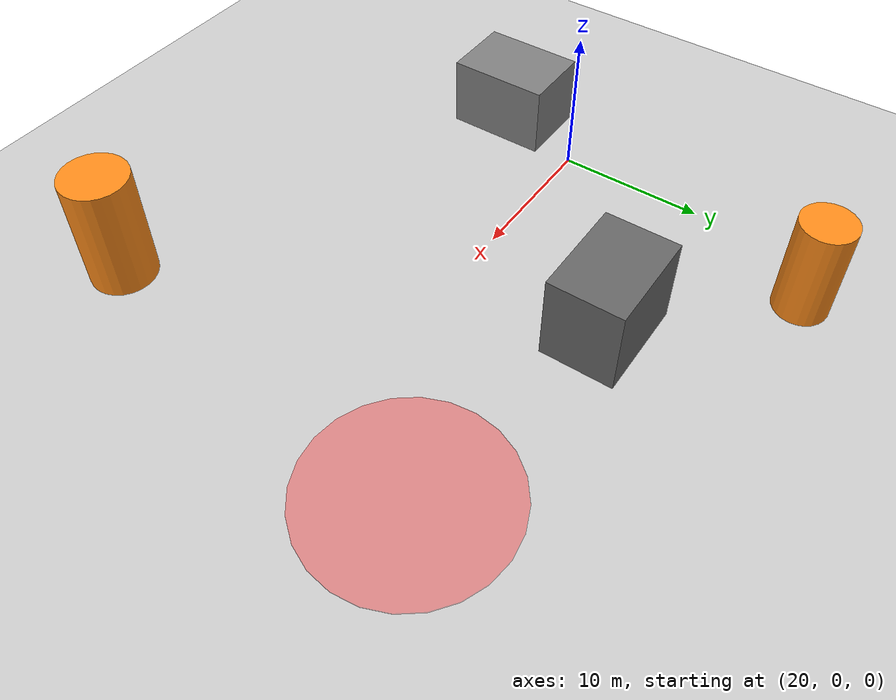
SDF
<?xml version="1.0" ?>
<sdf version="1.6">
  <world name="task_allocate_obstacle_world">
    <include>
      <uri>model://sun</uri>
    </include>
    <include>
      <uri>model://ground_plane</uri>
    </include>

    <physics name="default_physics" default="0" type="ode">
      <gravity>0 0 -9.8066</gravity>
      <max_step_size>0.004</max_step_size>
      <real_time_factor>1</real_time_factor>
      <real_time_update_rate>250</real_time_update_rate>
    </physics>

    <model name="building_box_1">
      <static>true</static>
      <pose>18 -6 2.5 0 0 0</pose>
      <link name="link">
        <collision name="collision">
          <geometry><box><size>5 7 5</size></box></geometry>
        </collision>
        <visual name="visual">
          <geometry><box><size>5 7 5</size></box></geometry>
          <material><ambient>0.50 0.50 0.50 1</ambient><diffuse>0.50 0.50 0.50 1</diffuse></material>
        </visual>
      </link>
    </model>

    <model name="building_box_2">
      <static>true</static>
      <pose>33 10 3.0 0 0 0</pose>
      <link name="link">
        <collision name="collision">
          <geometry><box><size>7 5 6</size></box></geometry>
        </collision>
        <visual name="visual">
          <geometry><box><size>7 5 6</size></box></geometry>
          <material><ambient>0.40 0.40 0.40 1</ambient><diffuse>0.40 0.40 0.40 1</diffuse></material>
        </visual>
      </link>
    </model>

    <model name="tower_cylinder_1">
      <static>true</static>
      <pose>46 -18 4.0 0 0 0</pose>
      <link name="link">
        <collision name="collision">
          <geometry><cylinder><radius>2.2</radius><length>8.0</length></cylinder></geometry>
        </collision>
        <visual name="visual">
          <geometry><cylinder><radius>2.2</radius><length>8.0</length></cylinder></geometry>
          <material><ambient>1.00 0.55 0.10 1</ambient><diffuse>1.00 0.55 0.10 1</diffuse></material>
        </visual>
      </link>
    </model>

    <model name="tower_cylinder_2">
      <static>true</static>
      <pose>24 19 3.5 0 0 0</pose>
      <link name="link">
        <collision name="collision">
          <geometry><cylinder><radius>1.8</radius><length>7.0</length></cylinder></geometry>
        </collision>
        <visual name="visual">
          <geometry><cylinder><radius>1.8</radius><length>7.0</length></cylinder></geometry>
          <material><ambient>1.00 0.55 0.10 1</ambient><diffuse>1.00 0.55 0.10 1</diffuse></material>
        </visual>
      </link>
    </model>

    <model name="danger_zone_visual">
      <static>true</static>
      <pose>49 7 0.05 0 0 0</pose>
      <link name="link">
        <visual name="visual">
          <geometry><cylinder><radius>6.5</radius><length>0.1</length></cylinder></geometry>
          <material>
            <ambient>1.00 0.05 0.05 0.35</ambient>
            <diffuse>1.00 0.05 0.05 0.35</diffuse>
          </material>
          <transparency>0.65</transparency>
        </visual>
      </link>
    </model>
  </world>
</sdf>
